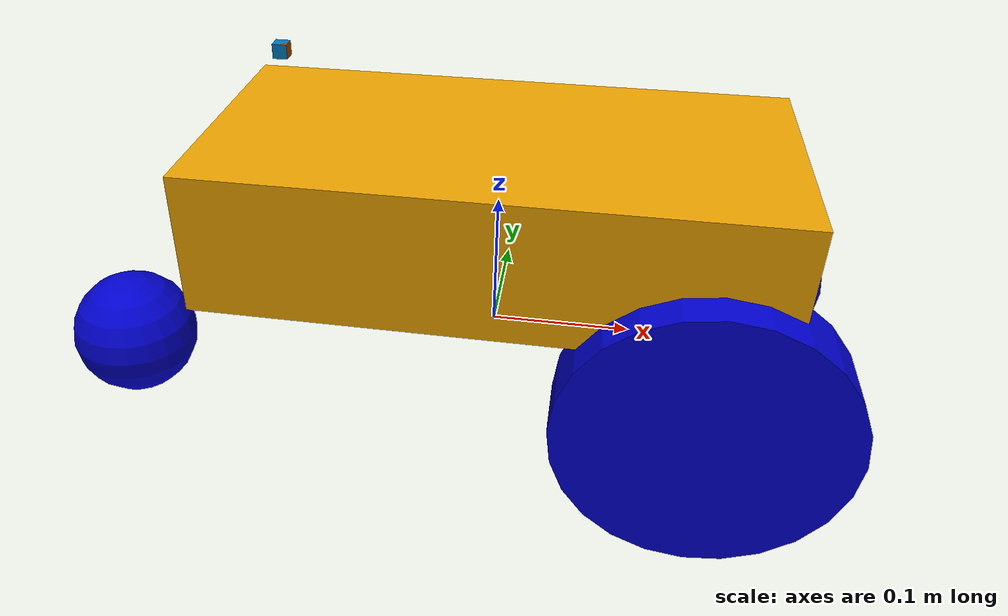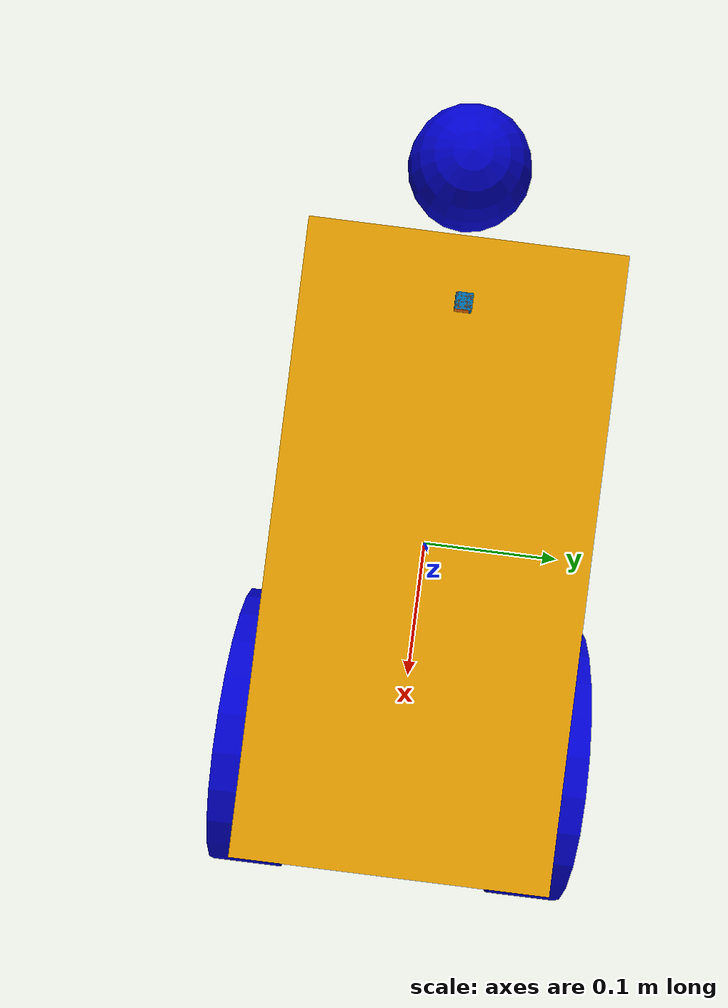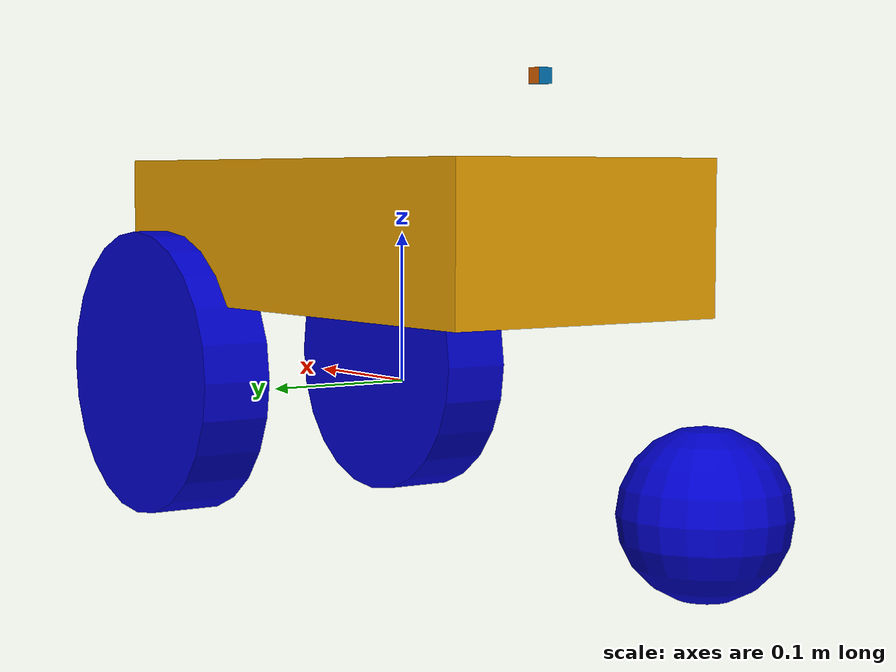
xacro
<?xml version='1.0'?>

<robot name="robot" xmlns:xacro="http://www.ros.org/wiki/xacro">
 <material name="blue">
    <color rgba="0.0 0.0 0.8 1.0"/>
  </material>
   <gazebo>
    <plugin name="differential_drive_controller" filename="libgazebo_ros_diff_drive.so">
      <legacyMode>false</legacyMode>
      <alwaysOn>true</alwaysOn>
      <updateRate>20</updateRate>
      <leftJoint>left_wheel_hinge</leftJoint>
      <rightJoint>right_wheel_hinge</rightJoint>
      <wheelSeparation>0.2</wheelSeparation>
      <wheelDiameter>0.1</wheelDiameter>
      <torque>20</torque>
      <commandTopic>cmd_vel</commandTopic>
      <odometryTopic>odom</odometryTopic>
      <odometryFrame>odom</odometryFrame>
      <robotBaseFrame>chassis</robotBaseFrame>
    </plugin>
  </gazebo>

  <link name='chassis'>
    <visual name='chassis_visual'>
      <origin xyz="0 0 0.1" rpy=" 0 0 0"/>
      <geometry>
        <box size="0.4 0.2 0.1"/>
      </geometry>
    </visual>

    <inertial>
      <mass value="10.0"/>
      <origin xyz="0 0 0.1" rpy=" 0 0 0"/>
      <inertia
          ixx="1.0" ixy="0" ixz="0"
          iyy="1.0" iyz="0"
          izz="1.0"
      />
    </inertial>

    <collision name='caster_collision'>
      <origin xyz="-0.15 0 -0.05" rpy=" 0 0 0"/>
      <geometry>
        <box size="0.4 0.2 0.1"/>
      </geometry>

    </collision>

   </link>
   <link name="castor_wheel">

    <visual name="castor_wheel_visual">
      <origin xyz="-0.15 0 0.05" rpy="0 0 0"/>
      <geometry>
        <sphere radius="0.05"/>
      </geometry>
      <material name='blue'/>
    </visual>

  </link>

   <link name="left_wheel">
    <!--origin xyz="0.1 0.13 0.1" rpy="0 1.5707 1.5707"/-->
    <collision name="collision">
      <origin xyz="0 0 0" rpy="0 1.5707 1.5707"/>
      <geometry>
        <cylinder radius="0.1" length="0.05"/>
      </geometry>
    </collision>

    <visual name="left_wheel_visual">
      <origin xyz="0 0 0" rpy="0 1.5707 1.5707"/>
      <geometry>
        <cylinder radius="0.1" length="0.05"/>
      </geometry>
      <material name='blue'/>
    </visual>
    <inertial>
      <origin xyz="0 0 0" rpy="0 1.5707 1.5707"/>
      <mass value="1"/>
      <cylinder_inertia m="1" r="0.1" h="0.05"/>
      <inertia
        ixx="1.0" ixy="0.0" ixz="0.0"
        iyy="1.0" iyz="0.0"
        izz="1.0"/>
    </inertial>
  </link>

  <link name="right_wheel">
    <!--origin xyz="0.1 -0.13 0.1" rpy="0 1.5707 1.5707"/-->
    <collision name="collision">
      <origin xyz="0 0 0" rpy="0 1.5707 1.5707"/>
      <geometry>
        <cylinder radius="0.1" length="0.05"/>
      </geometry>
    </collision>

    <visual name="right_wheel_visual">
      <origin xyz="0 0 0" rpy="0 1.5707 1.5707"/>
      <geometry>
        <cylinder radius="0.1" length="0.05"/>
      </geometry>
       <material name='blue'/>
    </visual>
    <inertial>
      <origin xyz="0 0 0" rpy="0 1.5707 1.5707"/>
      <mass value="1"/>
      <cylinder_inertia m="1" r="0.1" h="0.05"/>
      <inertia
        ixx="1.0" ixy="0.0" ixz="0.0"
        iyy="1.0" iyz="0.0"
        izz="1.0"/>
    </inertial>
  </link>
  <link name="base_sonar">
    <visual>
      <origin xyz="0 0 0" rpy="0 0 0"/>
      <geometry>
        <box size="0.01 0.01 0.01"/>
      </geometry>
    </visual>
    <inertial>
      <mass value="1e-5" />
      <origin xyz="0 0 0" rpy="0 0 0"/>
      <inertia ixx="1e-6" ixy="0" ixz="0" iyy="1e-6" iyz="0" izz="1e-6" />
    </inertial>
 </link>
  <link name="imu_link">
    <visual>
      <origin xyz="0 0 0" rpy="0 0 0"/>
      <geometry>
        <box size="0.01 0.01 0.01"/>
      </geometry>
    </visual>
    <inertial>
      <mass value="1e-5" />
      <origin xyz="0 0 0" rpy="0 0 0"/>
      <inertia ixx="1e-6" ixy="0" ixz="0" iyy="1e-6" iyz="0" izz="1e-6" />
    </inertial>
 </link>

  <joint type="continuous" name="left_wheel_hinge">
    <origin xyz="0.15 0.1 0" rpy="0 0 0"/>
    <child link="left_wheel"/>
    <parent link="chassis"/>
    <axis xyz="0 1 0" rpy="0 0 0"/>
    <limit effort="100" velocity="100"/>
    <joint_properties damping="0.0" friction="0.0"/>
  </joint>

  <joint type="continuous" name="right_wheel_hinge">
    <origin xyz="0.15 -0.1 0" rpy="0 0 0"/>
    <child link="right_wheel"/>
    <parent link="chassis"/>
    <axis xyz="0 1 0" rpy="0 0 0"/>
    <limit effort="100" velocity="100"/>
    <joint_properties damping="0.0" friction="0.0"/>
   </joint>

   <joint type="continuous" name="castor_wheel_hinge">
    <origin xyz="-0.15 0 -0.1" rpy="0 0 0"/>
    <child link="castor_wheel"/>
    <parent link="chassis"/>
    <axis xyz="0 1 0" rpy="0 0 0"/>
    <limit effort="100" velocity="100"/>
    <joint_properties damping="0.0" friction="0.0"/>
  </joint>
  <joint name="sonar_front_joint" type="fixed">
    <axis xyz="0 1 0" />
    <origin rpy="0 0 0" xyz="-0.15 0 0.2" />
    <parent link="chassis"/>
    <child link="base_sonar"/>
</joint>
 <joint name="imu_joint" type="fixed">
    <axis xyz="0 1 0" />
    <origin rpy="0 0 0" xyz="-0.15 0.000001 0.2" />
    <parent link="chassis"/>
    <child link="imu_link"/>
</joint>
<gazebo reference="base_sonar">
   <sensor type="ray" name="TeraRanger">
      <pose>0 0 0 0 0 0</pose>
      <visualize>true</visualize>
      <update_rate>50</update_rate>
      <ray>
         <scan>
            <horizontal>
               <samples>10</samples>
               <resolution>1</resolution>
               <min_angle>-3.14159</min_angle>
               <max_angle>3.14159</max_angle>
            </horizontal>
            <vertical>
               <samples>10</samples>
               <resolution>1</resolution>
               <min_angle>-0.14835</min_angle>
               <max_angle>0.14835</max_angle>
            </vertical>
         </scan>
         <range>
            <min>0.01</min>
            <max>2.5</max>
            <resolution>0.2</resolution>
         </range>
      </ray>
      <plugin filename="libgazebo_ros_range.so" name="gazebo_ros_range">
         <gaussianNoise>0.005</gaussianNoise>
         <alwaysOn>true</alwaysOn>
         <updateRate>50</updateRate>
         <topicName>sensor/base_sonar</topicName>
         <frameName>base_sonar</frameName>
         <radiation>INFRARED</radiation>
         <fov>0.2967</fov>
      </plugin>
   </sensor>
   </gazebo>
    <gazebo reference="imu_link">
    <gravity>true</gravity>
    <sensor name="imu_sensor" type="imu">
      <always_on>true</always_on>
      <update_rate>100</update_rate>
      <visualize>true</visualize>
      <topic>__default_topic__</topic>
      <plugin filename="libgazebo_ros_imu_sensor.so" name="imu_plugin">
        <topicName>imu</topicName>
        <bodyName>imu_link</bodyName>
        <updateRateHZ>10.0</updateRateHZ>
        <gaussianNoise>0.0</gaussianNoise>
        <xyzOffset>0 0 0</xyzOffset>
        <rpyOffset>0 0 0</rpyOffset>
        <frameName>imu_link</frameName>
      </plugin>
      <pose>0 0 0 0 0 0</pose>
    </sensor>
  </gazebo>

 </robot>
